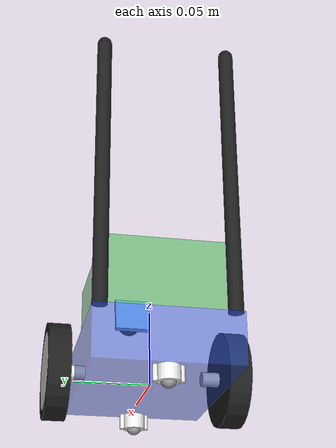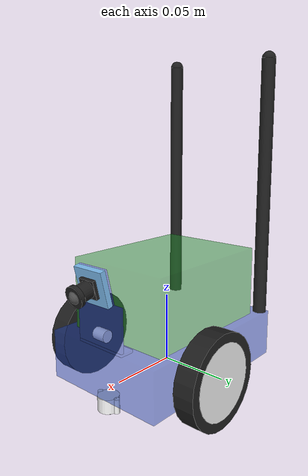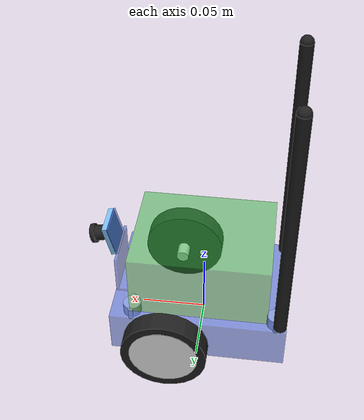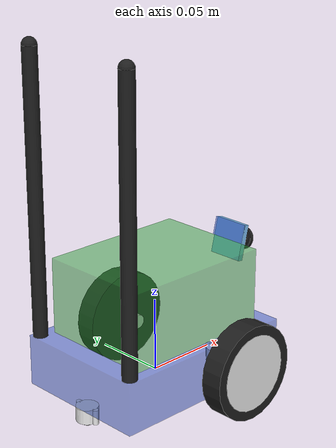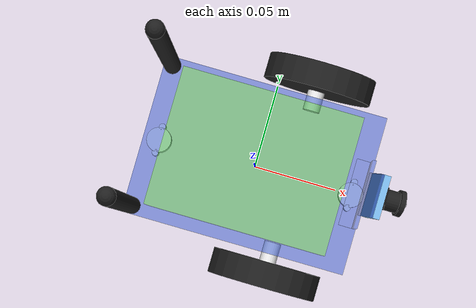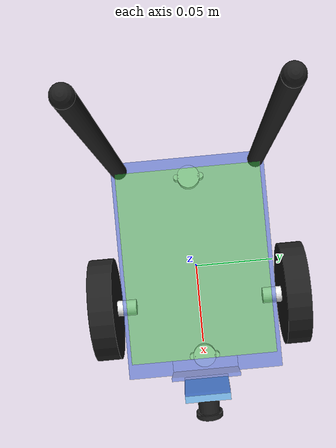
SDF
<sdf version='1.6'>
  <model name='jetbot'>
    <link name='base_footprint'>
      <pose frame=''>0 0 0 0 -0 0</pose>
      <inertial>
        <pose frame=''>0.018503 -0 0.02339 0 -0 0</pose>
        <mass>1.75448</mass>
        <inertia>
          <ixx>0.0854841</ixx>
          <ixy>-1.2839e-19</ixy>
          <ixz>3.57813e-05</ixz>
          <iyy>0.0820202</iyy>
          <iyz>-1.62302e-19</iyz>
          <izz>0.085716</izz>
        </inertia>
      </inertial>
      <collision name='base_footprint_fixed_joint_lump__base_link_collision'>
        <pose frame=''>0 0 0.013 0 -0 0</pose>
        <geometry>
          <box>
            <size>0.134 0.095 0.035</size>
          </box>
        </geometry>
        <surface>
          <contact>
            <ode/>
          </contact>
          <friction>
            <ode/>
          </friction>
        </surface>
      </collision>
      <collision name='base_footprint_fixed_joint_lump__back_caster_base_collision_1'>
        <pose frame=''>-0.06 0 -0.0097 0 -0 0</pose>
        <geometry>
          <cylinder>
            <length>0.01</length>
            <radius>0.0075</radius>
          </cylinder>
        </geometry>
        <surface>
          <contact>
            <ode/>
          </contact>
          <friction>
            <ode/>
          </friction>
        </surface>
      </collision>
      <collision name='base_footprint_fixed_joint_lump__back_caster_collision_2'>
        <pose frame=''>-0.06 0 -0.0137 0 -0 0</pose>
        <geometry>
          <sphere>
            <radius>0.005</radius>
          </sphere>
        </geometry>
        <surface>
          <contact>
            <ode/>
          </contact>
          <friction>
            <ode>
              <mu>0.01</mu>
              <mu2>0.01</mu2>
            </ode>
          </friction>
        </surface>
      </collision>
      <collision name='base_footprint_fixed_joint_lump__back_caster_lt_cyl_collision_3'>
        <pose frame=''>-0.06 0.008 -0.0097 0 -0 0</pose>
        <geometry>
          <cylinder>
            <length>0.01</length>
            <radius>0.002</radius>
          </cylinder>
        </geometry>
        <surface>
          <contact>
            <ode/>
          </contact>
          <friction>
            <ode/>
          </friction>
        </surface>
      </collision>
      <collision name='base_footprint_fixed_joint_lump__back_caster_rt_cyl_collision_4'>
        <pose frame=''>-0.06 -0.008 -0.0097 0 -0 0</pose>
        <geometry>
          <cylinder>
            <length>0.01</length>
            <radius>0.002</radius>
          </cylinder>
        </geometry>
        <surface>
          <contact>
            <ode/>
          </contact>
          <friction>
            <ode/>
          </friction>
        </surface>
      </collision>
      <collision name='base_footprint_fixed_joint_lump__front_caster_base_collision_5'>
        <pose frame=''>0.06 0 -0.0097 0 -0 0</pose>
        <geometry>
          <cylinder>
            <length>0.01</length>
            <radius>0.0075</radius>
          </cylinder>
        </geometry>
        <surface>
          <contact>
            <ode/>
          </contact>
          <friction>
            <ode/>
          </friction>
        </surface>
      </collision>
      <collision name='base_footprint_fixed_joint_lump__front_caster_collision_6'>
        <pose frame=''>0.06 0 -0.0137 0 -0 0</pose>
        <geometry>
          <sphere>
            <radius>0.005</radius>
          </sphere>
        </geometry>
        <surface>
          <contact>
            <ode/>
          </contact>
          <friction>
            <ode>
              <mu>0.01</mu>
              <mu2>0.01</mu2>
            </ode>
          </friction>
        </surface>
      </collision>
      <collision name='base_footprint_fixed_joint_lump__front_caster_lt_cyl_collision_7'>
        <pose frame=''>0.06 0.008 -0.0097 0 -0 0</pose>
        <geometry>
          <cylinder>
            <length>0.01</length>
            <radius>0.002</radius>
          </cylinder>
        </geometry>
        <surface>
          <contact>
            <ode/>
          </contact>
          <friction>
            <ode/>
          </friction>
        </surface>
      </collision>
      <collision name='base_footprint_fixed_joint_lump__front_caster_rt_cyl_collision_8'>
        <pose frame=''>0.06 -0.008 -0.0097 0 -0 0</pose>
        <geometry>
          <cylinder>
            <length>0.01</length>
            <radius>0.002</radius>
          </cylinder>
        </geometry>
        <surface>
          <contact>
            <ode/>
          </contact>
          <friction>
            <ode/>
          </friction>
        </surface>
      </collision>
      <collision name='base_footprint_fixed_joint_lump__lt_antenna_collision_9'>
        <pose frame=''>-0.062 0.0425 0.1255 0 -0 0</pose>
        <geometry>
          <cylinder>
            <length>0.19</length>
            <radius>0.005</radius>
          </cylinder>
        </geometry>
        <surface>
          <contact>
            <ode/>
          </contact>
          <friction>
            <ode/>
          </friction>
        </surface>
      </collision>
      <collision name='base_footprint_fixed_joint_lump__lt_antenna_top_collision_10'>
        <pose frame=''>-0.062 0.0425 0.2205 0 -0 0</pose>
        <geometry>
          <sphere>
            <radius>0.005</radius>
          </sphere>
        </geometry>
        <surface>
          <contact>
            <ode/>
          </contact>
          <friction>
            <ode/>
          </friction>
        </surface>
      </collision>
      <collision name='base_footprint_fixed_joint_lump__lt_wheel_shaft_collision_11'>
        <pose frame=''>0.023 0.048 0.013 1.5708 -0 0</pose>
        <geometry>
          <cylinder>
            <length>0.015</length>
            <radius>0.005</radius>
          </cylinder>
        </geometry>
        <surface>
          <contact>
            <ode/>
          </contact>
          <friction>
            <ode/>
          </friction>
        </surface>
      </collision>
      <collision name='base_footprint_fixed_joint_lump__lt_wheelc_collision_12'>
        <pose frame=''>0.023 0.06 0.013 1.5708 -0 0</pose>
        <geometry>
          <cylinder>
            <length>0.015</length>
            <radius>0.026</radius>
          </cylinder>
        </geometry>
        <surface>
          <contact>
            <ode/>
          </contact>
          <friction>
            <ode/>
          </friction>
        </surface>
      </collision>
      <collision name='base_footprint_fixed_joint_lump__pcb_boards_collision_13'>
        <pose frame=''>0 0 0.055 0 -0 0</pose>
        <geometry>
          <box>
            <size>0.105 0.08 0.055</size>
          </box>
        </geometry>
        <surface>
          <contact>
            <ode/>
          </contact>
          <friction>
            <ode/>
          </friction>
        </surface>
      </collision>
      <collision name='base_footprint_fixed_joint_lump__rt_antenna_collision_14'>
        <pose frame=''>-0.062 -0.0425 0.1255 0 -0 0</pose>
        <geometry>
          <cylinder>
            <length>0.19</length>
            <radius>0.005</radius>
          </cylinder>
        </geometry>
        <surface>
          <contact>
            <ode/>
          </contact>
          <friction>
            <ode/>
          </friction>
        </surface>
      </collision>
      <collision name='base_footprint_fixed_joint_lump__rt_antenna_top_collision_15'>
        <pose frame=''>-0.062 -0.0425 0.2205 0 -0 0</pose>
        <geometry>
          <sphere>
            <radius>0.005</radius>
          </sphere>
        </geometry>
        <surface>
          <contact>
            <ode/>
          </contact>
          <friction>
            <ode/>
          </friction>
        </surface>
      </collision>
      <collision name='base_footprint_fixed_joint_lump__rt_wheel_shaft_collision_16'>
        <pose frame=''>0.023 -0.048 0.013 1.5708 -0 0</pose>
        <geometry>
          <cylinder>
            <length>0.015</length>
            <radius>0.005</radius>
          </cylinder>
        </geometry>
        <surface>
          <contact>
            <ode/>
          </contact>
          <friction>
            <ode/>
          </friction>
        </surface>
      </collision>
      <collision name='base_footprint_fixed_joint_lump__rt_wheelc_collision_17'>
        <pose frame=''>0.023 -0.06 0.013 1.5708 -0 0</pose>
        <geometry>
          <cylinder>
            <length>0.015</length>
            <radius>0.026</radius>
          </cylinder>
        </geometry>
        <surface>
          <contact>
            <ode/>
          </contact>
          <friction>
            <ode/>
          </friction>
        </surface>
      </collision>
      <collision name='base_footprint_fixed_joint_lump__camera_mount_base_collision_18'>
        <pose frame=''>0.0615 0 0.0315 0 -0 0</pose>
        <geometry>
          <box>
            <size>0.01 0.04 0.002</size>
          </box>
        </geometry>
        <surface>
          <contact>
            <ode/>
          </contact>
          <friction>
            <ode/>
          </friction>
        </surface>
      </collision>
      <collision name='base_footprint_fixed_joint_lump__camera_mount_over_collision_19'>
        <pose frame=''>0.0655 0 0.0475 3.14159 1.57079 3.14159</pose>
        <geometry>
          <box>
            <size>0.03 0.04 0.002</size>
          </box>
        </geometry>
        <surface>
          <contact>
            <ode/>
          </contact>
          <friction>
            <ode/>
          </friction>
        </surface>
      </collision>
      <collision name='base_footprint_fixed_joint_lump__camera_mount_angled_collision_20'>
        <pose frame=''>0.0685 0 0.0745 3.14159 1.3308 3.14159</pose>
        <geometry>
          <box>
            <size>0.025 0.025 0.002</size>
          </box>
        </geometry>
        <surface>
          <contact>
            <ode/>
          </contact>
          <friction>
            <ode/>
          </friction>
        </surface>
      </collision>
      <collision name='base_footprint_fixed_joint_lump__camera_screen_base_collision_21'>
        <pose frame=''>0.070928 0 0.073906 3.14159 1.3308 3.14159</pose>
        <geometry>
          <box>
            <size>0.025 0.025 0.004</size>
          </box>
        </geometry>
        <surface>
          <contact>
            <ode/>
          </contact>
          <friction>
            <ode/>
          </friction>
        </surface>
      </collision>
      <collision name='base_footprint_fixed_joint_lump__camera_pcb_base_collision_22'>
        <pose frame=''>0.073357 0 0.073312 3.14159 1.3308 3.14159</pose>
        <geometry>
          <box>
            <size>0.013 0.013 0.004</size>
          </box>
        </geometry>
        <surface>
          <contact>
            <ode/>
          </contact>
          <friction>
            <ode/>
          </friction>
        </surface>
      </collision>
      <collision name='base_footprint_fixed_joint_lump__camera_lens_body_collision_23'>
        <pose frame=''>0.080156 0 0.071648 3.14159 1.3308 3.14159</pose>
        <geometry>
          <cylinder>
            <length>0.01</length>
            <radius>0.006</radius>
          </cylinder>
        </geometry>
        <surface>
          <contact>
            <ode/>
          </contact>
          <friction>
            <ode/>
          </friction>
        </surface>
      </collision>
      <collision name='base_footprint_fixed_joint_lump__camera_lens_body_out_collision_24'>
        <pose frame=''>0.085013 0 0.070459 3.14159 1.3308 3.14159</pose>
        <geometry>
          <cylinder>
            <length>0.003</length>
            <radius>0.0075</radius>
          </cylinder>
        </geometry>
        <surface>
          <contact>
            <ode/>
          </contact>
          <friction>
            <ode/>
          </friction>
        </surface>
      </collision>
      <collision name='base_footprint_fixed_joint_lump__camera_lens_collision_25'>
        <pose frame=''>0.084041 0 0.070697 3.14159 1.3308 3.14159</pose>
        <geometry>
          <sphere>
            <radius>0.005</radius>
          </sphere>
        </geometry>
        <surface>
          <contact>
            <ode/>
          </contact>
          <friction>
            <ode/>
          </friction>
        </surface>
      </collision>
      <visual name='base_footprint_fixed_joint_lump__base_link_visual'>
        <pose frame=''>0 0 0.013 0 -0 0</pose>
        <geometry>
          <box>
            <size>0.134 0.095 0.035</size>
          </box>
        </geometry>
        <material>
          <script>
            <name>Gazebo/BlueTransparent</name>
            <uri>file://media/materials/scripts/gazebo.material</uri>
          </script>
        </material>
      </visual>
      <visual name='base_footprint_fixed_joint_lump__back_caster_base_visual_1'>
        <pose frame=''>-0.06 0 -0.0097 0 -0 0</pose>
        <geometry>
          <cylinder>
            <length>0.01</length>
            <radius>0.0075</radius>
          </cylinder>
        </geometry>
        <material>
          <script>
            <name>Gazebo/White</name>
            <uri>file://media/materials/scripts/gazebo.material</uri>
          </script>
        </material>
      </visual>
      <visual name='base_footprint_fixed_joint_lump__back_caster_visual_2'>
        <pose frame=''>-0.06 0 -0.0137 0 -0 0</pose>
        <geometry>
          <sphere>
            <radius>0.005</radius>
          </sphere>
        </geometry>
        <material>
          <script>
            <name>Gazebo/Grey</name>
            <uri>file://media/materials/scripts/gazebo.material</uri>
          </script>
        </material>
      </visual>
      <visual name='base_footprint_fixed_joint_lump__back_caster_lt_cyl_visual_3'>
        <pose frame=''>-0.06 0.008 -0.0097 0 -0 0</pose>
        <geometry>
          <cylinder>
            <length>0.01</length>
            <radius>0.002</radius>
          </cylinder>
        </geometry>
        <material>
          <script>
            <name>Gazebo/White</name>
            <uri>file://media/materials/scripts/gazebo.material</uri>
          </script>
        </material>
      </visual>
      <visual name='base_footprint_fixed_joint_lump__back_caster_rt_cyl_visual_4'>
        <pose frame=''>-0.06 -0.008 -0.0097 0 -0 0</pose>
        <geometry>
          <cylinder>
            <length>0.01</length>
            <radius>0.002</radius>
          </cylinder>
        </geometry>
        <material>
          <script>
            <name>Gazebo/White</name>
            <uri>file://media/materials/scripts/gazebo.material</uri>
          </script>
        </material>
      </visual>
      <visual name='base_footprint_fixed_joint_lump__front_caster_base_visual_5'>
        <pose frame=''>0.06 0 -0.0097 0 -0 0</pose>
        <geometry>
          <cylinder>
            <length>0.01</length>
            <radius>0.0075</radius>
          </cylinder>
        </geometry>
        <material>
          <script>
            <name>Gazebo/White</name>
            <uri>file://media/materials/scripts/gazebo.material</uri>
          </script>
        </material>
      </visual>
      <visual name='base_footprint_fixed_joint_lump__front_caster_visual_6'>
        <pose frame=''>0.06 0 -0.0137 0 -0 0</pose>
        <geometry>
          <sphere>
            <radius>0.005</radius>
          </sphere>
        </geometry>
        <material>
          <script>
            <name>Gazebo/Grey</name>
            <uri>file://media/materials/scripts/gazebo.material</uri>
          </script>
        </material>
      </visual>
      <visual name='base_footprint_fixed_joint_lump__front_caster_lt_cyl_visual_7'>
        <pose frame=''>0.06 0.008 -0.0097 0 -0 0</pose>
        <geometry>
          <cylinder>
            <length>0.01</length>
            <radius>0.002</radius>
          </cylinder>
        </geometry>
        <material>
          <script>
            <name>Gazebo/White</name>
            <uri>file://media/materials/scripts/gazebo.material</uri>
          </script>
        </material>
      </visual>
      <visual name='base_footprint_fixed_joint_lump__front_caster_rt_cyl_visual_8'>
        <pose frame=''>0.06 -0.008 -0.0097 0 -0 0</pose>
        <geometry>
          <cylinder>
            <length>0.01</length>
            <radius>0.002</radius>
          </cylinder>
        </geometry>
        <material>
          <script>
            <name>Gazebo/White</name>
            <uri>file://media/materials/scripts/gazebo.material</uri>
          </script>
        </material>
      </visual>
      <visual name='base_footprint_fixed_joint_lump__lt_antenna_visual_9'>
        <pose frame=''>-0.062 0.0425 0.1255 0 -0 0</pose>
        <geometry>
          <cylinder>
            <length>0.19</length>
            <radius>0.005</radius>
          </cylinder>
        </geometry>
        <material>
          <script>
            <name>Gazebo/Black</name>
            <uri>file://media/materials/scripts/gazebo.material</uri>
          </script>
        </material>
      </visual>
      <visual name='base_footprint_fixed_joint_lump__lt_antenna_top_visual_10'>
        <pose frame=''>-0.062 0.0425 0.2205 0 -0 0</pose>
        <geometry>
          <sphere>
            <radius>0.005</radius>
          </sphere>
        </geometry>
        <material>
          <script>
            <name>Gazebo/Black</name>
            <uri>file://media/materials/scripts/gazebo.material</uri>
          </script>
        </material>
      </visual>
      <visual name='base_footprint_fixed_joint_lump__lt_wheel_shaft_visual_11'>
        <pose frame=''>0.023 0.048 0.013 1.5708 -0 0</pose>
        <geometry>
          <cylinder>
            <length>0.015</length>
            <radius>0.005</radius>
          </cylinder>
        </geometry>
        <material>
          <script>
            <name>Gazebo/White</name>
            <uri>file://media/materials/scripts/gazebo.material</uri>
          </script>
        </material>
      </visual>
      <visual name='base_footprint_fixed_joint_lump__lt_wheelc_visual_12'>
        <pose frame=''>0.023 0.06 0.013 1.5708 -0 0</pose>
        <geometry>
          <cylinder>
            <length>0.015</length>
            <radius>0.026</radius>
          </cylinder>
        </geometry>
        <material>
          <script>
            <name>Gazebo/White</name>
            <uri>file://media/materials/scripts/gazebo.material</uri>
          </script>
        </material>
      </visual>
      <visual name='base_footprint_fixed_joint_lump__pcb_boards_visual_13'>
        <pose frame=''>0 0 0.055 0 -0 0</pose>
        <geometry>
          <box>
            <size>0.105 0.08 0.055</size>
          </box>
        </geometry>
        <material>
          <script>
            <name>Gazebo/GreenTransparent</name>
            <uri>file://media/materials/scripts/gazebo.material</uri>
          </script>
        </material>
      </visual>
      <visual name='base_footprint_fixed_joint_lump__rt_antenna_visual_14'>
        <pose frame=''>-0.062 -0.0425 0.1255 0 -0 0</pose>
        <geometry>
          <cylinder>
            <length>0.19</length>
            <radius>0.005</radius>
          </cylinder>
        </geometry>
        <material>
          <script>
            <name>Gazebo/Black</name>
            <uri>file://media/materials/scripts/gazebo.material</uri>
          </script>
        </material>
      </visual>
      <visual name='base_footprint_fixed_joint_lump__rt_antenna_top_visual_15'>
        <pose frame=''>-0.062 -0.0425 0.2205 0 -0 0</pose>
        <geometry>
          <sphere>
            <radius>0.005</radius>
          </sphere>
        </geometry>
        <material>
          <script>
            <name>Gazebo/Black</name>
            <uri>file://media/materials/scripts/gazebo.material</uri>
          </script>
        </material>
      </visual>
      <visual name='base_footprint_fixed_joint_lump__rt_wheel_shaft_visual_16'>
        <pose frame=''>0.023 -0.048 0.013 1.5708 -0 0</pose>
        <geometry>
          <cylinder>
            <length>0.015</length>
            <radius>0.005</radius>
          </cylinder>
        </geometry>
        <material>
          <script>
            <name>Gazebo/White</name>
            <uri>file://media/materials/scripts/gazebo.material</uri>
          </script>
        </material>
      </visual>
      <visual name='base_footprint_fixed_joint_lump__rt_wheelc_visual_17'>
        <pose frame=''>0.023 -0.06 0.013 1.5708 -0 0</pose>
        <geometry>
          <cylinder>
            <length>0.015</length>
            <radius>0.026</radius>
          </cylinder>
        </geometry>
        <material>
          <script>
            <name>Gazebo/White</name>
            <uri>file://media/materials/scripts/gazebo.material</uri>
          </script>
        </material>
      </visual>
      <visual name='base_footprint_fixed_joint_lump__camera_mount_base_visual_18'>
        <pose frame=''>0.0615 0 0.0315 0 -0 0</pose>
        <geometry>
          <box>
            <size>0.01 0.04 0.002</size>
          </box>
        </geometry>
        <material>
          <script>
            <name>Gazebo/BlueTransparent</name>
            <uri>file://media/materials/scripts/gazebo.material</uri>
          </script>
        </material>
      </visual>
      <visual name='base_footprint_fixed_joint_lump__camera_mount_over_visual_19'>
        <pose frame=''>0.0655 0 0.0475 3.14159 1.57079 3.14159</pose>
        <geometry>
          <box>
            <size>0.03 0.04 0.002</size>
          </box>
        </geometry>
        <material>
          <script>
            <name>Gazebo/BlueTransparent</name>
            <uri>file://media/materials/scripts/gazebo.material</uri>
          </script>
        </material>
      </visual>
      <visual name='base_footprint_fixed_joint_lump__camera_mount_angled_visual_20'>
        <pose frame=''>0.0685 0 0.0745 3.14159 1.3308 3.14159</pose>
        <geometry>
          <box>
            <size>0.025 0.025 0.002</size>
          </box>
        </geometry>
        <material>
          <script>
            <name>Gazebo/BlueTransparent</name>
            <uri>file://media/materials/scripts/gazebo.material</uri>
          </script>
        </material>
      </visual>
      <visual name='base_footprint_fixed_joint_lump__camera_screen_base_visual_21'>
        <pose frame=''>0.070928 0 0.073906 3.14159 1.3308 3.14159</pose>
        <geometry>
          <box>
            <size>0.025 0.025 0.004</size>
          </box>
        </geometry>
        <material>
          <script>
            <name>Gazebo/SkyBlue</name>
            <uri>file://media/materials/scripts/gazebo.material</uri>
          </script>
        </material>
      </visual>
      <visual name='base_footprint_fixed_joint_lump__camera_pcb_base_visual_22'>
        <pose frame=''>0.073357 0 0.073312 3.14159 1.3308 3.14159</pose>
        <geometry>
          <box>
            <size>0.013 0.013 0.004</size>
          </box>
        </geometry>
        <material>
          <script>
            <name>Gazebo/Black</name>
            <uri>file://media/materials/scripts/gazebo.material</uri>
          </script>
        </material>
      </visual>
      <visual name='base_footprint_fixed_joint_lump__camera_lens_body_visual_23'>
        <pose frame=''>0.080156 0 0.071648 3.14159 1.3308 3.14159</pose>
        <geometry>
          <cylinder>
            <length>0.01</length>
            <radius>0.006</radius>
          </cylinder>
        </geometry>
        <material>
          <script>
            <name>Gazebo/Black</name>
            <uri>file://media/materials/scripts/gazebo.material</uri>
          </script>
        </material>
      </visual>
      <visual name='base_footprint_fixed_joint_lump__camera_lens_body_out_visual_24'>
        <pose frame=''>0.085013 0 0.070459 3.14159 1.3308 3.14159</pose>
        <geometry>
          <cylinder>
            <length>0.003</length>
            <radius>0.0075</radius>
          </cylinder>
        </geometry>
        <material>
          <script>
            <name>Gazebo/Black</name>
            <uri>file://media/materials/scripts/gazebo.material</uri>
          </script>
        </material>
      </visual>
      <visual name='base_footprint_fixed_joint_lump__camera_lens_visual_25'>
        <pose frame=''>0.084041 0 0.070697 3.14159 1.3308 3.14159</pose>
        <geometry>
          <sphere>
            <radius>0.005</radius>
          </sphere>
        </geometry>
        <material>
          <script>
            <name>Gazebo/GreyTransparent</name>
            <uri>file://media/materials/scripts/gazebo.material</uri>
          </script>
        </material>
      </visual>
      <velocity_decay/>
      <velocity_decay/>
      <velocity_decay/>
      <velocity_decay/>
      <velocity_decay/>
      <velocity_decay/>
      <velocity_decay/>
      <velocity_decay/>
      <velocity_decay/>
      <velocity_decay/>
      <velocity_decay/>
      <velocity_decay/>
      <velocity_decay/>
      <velocity_decay/>
      <velocity_decay/>
      <velocity_decay/>
      <velocity_decay/>
      <velocity_decay/>
      <velocity_decay/>
      <velocity_decay/>
      <velocity_decay/>
      <velocity_decay/>
      <velocity_decay/>
      <velocity_decay/>
      <velocity_decay/>
      <velocity_decay/>
      <velocity_decay/>
      <sensor name='camera' type='camera'>
        <update_rate>30</update_rate>
        <camera name='head'>
          <horizontal_fov>1.39626</horizontal_fov>
          <image>
            <width>1280</width>
            <height>720</height>
            <format>R8G8B8</format>
          </image>
          <noise>
            <type>gaussian</type>
            <mean>0</mean>
            <stddev>0.007</stddev>
          </noise>
          <clip>
            <near>0.1</near>
            <far>100</far>
          </clip>

          <lens>
            <intrinsics>
              <fx>785.85762</fx>
              <fy>786.97327</fy>
              <cx>690.66733</cx>
              <cy>350.85049</cy>
              <s>0</s>
            </intrinsics>
          </lens>
        </camera>
        <plugin name='camera_controller' filename='libgazebo_ros_camera.so'>
          <alwaysOn>1</alwaysOn>
          <updateRate>0.0</updateRate>
          <cameraName>/jetbot_camera</cameraName>
          <imageTopicName>image_raw</imageTopicName>
          <cameraInfoTopicName>camera_info</cameraInfoTopicName>
          <frameName>camera_lens</frameName>
          <hackBaseline>0.07</hackBaseline>
          <distortionK1>0.0</distortionK1>
          <distortionK2>0.0</distortionK2>
          <distortionK3>0.0</distortionK3>
          <distortionT1>0.0</distortionT1>
          <distortionT2>0.0</distortionT2>
        </plugin>
        <pose frame=''>0.084041 0 0.070697 0 0.24 0</pose>
      </sensor>
      <gravity>1</gravity>
      <velocity_decay/>
    </link>
    <link name='lt_wheel'>
      <pose frame=''>0.023 0.0599 0.013 0 -0 0</pose>
      <inertial>
        <pose frame=''>0 0 0 0 -0 0</pose>
        <mass>0.6</mass>
        <inertia>
          <ixx>0.04</ixx>
          <ixy>0</ixy>
          <ixz>0</ixz>
          <iyy>0.04</iyy>
          <iyz>0</iyz>
          <izz>0.04</izz>
        </inertia>
      </inertial>
      <collision name='lt_wheel_collision'>
        <pose frame=''>0 0 0 1.5708 -0 0</pose>
        <geometry>
          <cylinder>
            <length>0.015</length>
            <radius>0.0325</radius>
          </cylinder>
        </geometry>
        <surface>
          <contact>
            <ode/>
          </contact>
          <friction>
            <ode>
              <mu>1.16</mu>
              <mu2>1.16</mu2>
            </ode>
          </friction>
        </surface>
      </collision>
      <visual name='lt_wheel_visual'>
        <pose frame=''>0 0 0 1.5708 -0 0</pose>
        <geometry>
          <cylinder>
            <length>0.015</length>
            <radius>0.0325</radius>
          </cylinder>
        </geometry>
        <material>
          <script>
            <name>Gazebo/Black</name>
            <uri>file://media/materials/scripts/gazebo.material</uri>
          </script>
        </material>
      </visual>
      <gravity>1</gravity>
      <velocity_decay/>
    </link>
    <joint name='lt_wheel_joint' type='revolute'>
      <child>lt_wheel</child>
      <parent>base_footprint</parent>
      <axis>
        <xyz>0 1 0</xyz>
        <limit>
          <lower>-1e+16</lower>
          <upper>1e+16</upper>
        </limit>
        <dynamics>
          <spring_reference>0</spring_reference>
          <spring_stiffness>0</spring_stiffness>
        </dynamics>
        <use_parent_model_frame>1</use_parent_model_frame>
      </axis>
    </joint>
    <link name='rt_wheel'>
      <pose frame=''>0.023 -0.0599 0.013 0 -0 0</pose>
      <inertial>
        <pose frame=''>0 0 0 0 -0 0</pose>
        <mass>0.6</mass>
        <inertia>
          <ixx>0.04</ixx>
          <ixy>0</ixy>
          <ixz>0</ixz>
          <iyy>0.04</iyy>
          <iyz>0</iyz>
          <izz>0.04</izz>
        </inertia>
      </inertial>
      <collision name='rt_wheel_collision'>
        <pose frame=''>0 0 0 1.5708 -0 0</pose>
        <geometry>
          <cylinder>
            <length>0.015</length>
            <radius>0.0325</radius>
          </cylinder>
        </geometry>
        <surface>
          <contact>
            <ode/>
          </contact>
          <friction>
            <ode>
              <mu>1.16</mu>
              <mu2>1.16</mu2>
            </ode>
          </friction>
        </surface>
      </collision>
      <visual name='rt_wheel_visual'>
        <pose frame=''>0 0 0 1.5708 -0 0</pose>
        <geometry>
          <cylinder>
            <length>0.015</length>
            <radius>0.0325</radius>
          </cylinder>
        </geometry>
        <material>
          <script>
            <name>Gazebo/Black</name>
            <uri>file://media/materials/scripts/gazebo.material</uri>
          </script>
        </material>
      </visual>
      <gravity>1</gravity>
      <velocity_decay/>
    </link>
    <joint name='rt_wheel_joint' type='revolute'>
      <child>rt_wheel</child>
      <parent>base_footprint</parent>
      <axis>
        <xyz>0 1 0</xyz>
        <limit>
          <lower>-1e+16</lower>
          <upper>1e+16</upper>
        </limit>
        <dynamics>
          <spring_reference>0</spring_reference>
          <spring_stiffness>0</spring_stiffness>
        </dynamics>
        <use_parent_model_frame>1</use_parent_model_frame>
      </axis>
    </joint>
    <plugin name='gazebo_ros_control' filename='libgazebo_ros_control.so'>
      <robotNamespace>/</robotNamespace>
    </plugin>
    <static>0</static>
    <plugin name='p3d_base_controller' filename='libgazebo_ros_p3d.so'>
      <rpyOffsets>0 0 0</rpyOffsets>
      <xyzOffsets>0 0 0</xyzOffsets>
      <frameName>base_footprint</frameName>
      <gaussianNoise>0.01</gaussianNoise>
      <topicName>gazebo_robot_pose</topicName>
      <updateRate>50.0</updateRate>
      <alwaysOn>1</alwaysOn>
      <bodyName>base_footprint</bodyName>
      <xyzOffset>0 0 0</xyzOffset>
      <rpyOffset>0 -0 0</rpyOffset>
    </plugin>
  </model>
</sdf>
